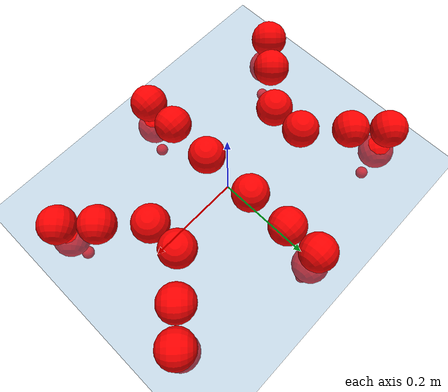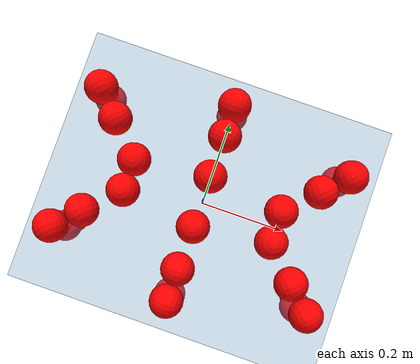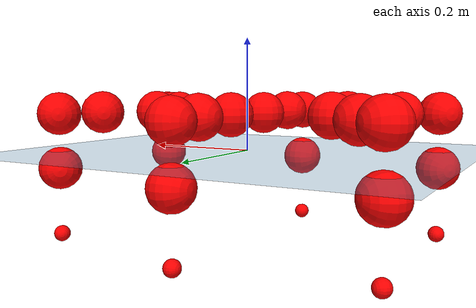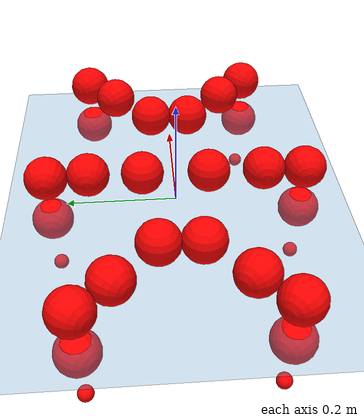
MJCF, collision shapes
<mujoco model="Golem">
  <compiler angle="radian" assetdir="assets" balanceinertia="true" inertiafromgeom="false"/>

  <option timestep="0.005" density="1.2" viscosity="2e-05"/>

  <size nkey="1"/>

  <visual>
    <quality shadowsize="8192"/>
    <map shadowclip="0.5"/>
  </visual>

  <default>
    <default class="/">
      <joint armature="0.01" damping="0.01" frictionloss="0.01"/>
      <geom contype="0" conaffinity="0" group="1" solref="-1000 -80"/>
      <site size="0.01 0.005 0.005" group="5"/>
      <general forcelimited="true" biastype="affine" gainprm="25" biasprm="0 -25 -0.5"/>
      <default class="visual">
        <geom type="mesh" group="2"/>
      </default>
      <default class="collision">
        <geom group="3"/>
      </default>
      <default class="foot">
        <geom size="0.01 0 0" condim="6" group="4" priority="1" solimp="0.015 1 0.01"/>
      </default>
      <default class="reward_collision_sphere">
        <geom group="5" rgba="1 0 0 1"/>
      </default>
    </default>
  </default>

  <asset>
    <texture type="skybox" colorspace="auto" name="//unnamed_texture_0" builtin="gradient" rgb1="0.95 0.95 0.95" rgb2="0.95 0.95 0.95" width="100" height="600"/>
    <texture type="2d" colorspace="auto" name="texplane" builtin="checker" rgb1="0.345 0.575 0.748" rgb2="0.345 0.575 0.748" markrgb="1 1 1" width="512" height="512"/>
    <material name="MatPlane" class="/" texture="texplane" texuniform="true" texrepeat="2 2" specular="0.9"/>
    <mesh name="body" class="/" file="body.stl" scale="0.001 0.001 0.001"/>
    <mesh name="coxa" class="/" file="coxa.stl" scale="0.001 0.001 0.001"/>
    <mesh name="femur" class="/" file="femur.stl" scale="0.001 0.001 0.001"/>
    <mesh name="tibia" class="/" file="tibia.stl" scale="0.001 0.001 0.001"/>
    <mesh name="tarsus" class="/" file="tarsus.stl" scale="0.001 0.001 0.001"/>
  </asset>

  <worldbody>
    <geom name="floor" class="/" size="100 100 0.125" type="plane" group="0" material="MatPlane"/>
    <light name="toplight_shadow" class="/" pos="0 0 5" dir="0.0990148 0.0990148 -0.990148" type="directional" ambient="0.04 0.04 0.04" diffuse="0.55 0.55 0.55" specular="0.12 0.12 0.12"/>
    <light name="toplight_fill" class="/" pos="0 0 5" dir="0.0990148 0.0990148 -0.990148" type="directional" castshadow="false" ambient="0.04 0.04 0.04" diffuse="0.3 0.3 0.3" specular="0.08 0.08 0.08"/>
    <body name="trunk" pos="-0.00099952 0.0014887 -0.000346406" quat="1 7.07246e-05 -2.69522e-05 -9.34034e-05">
      <inertial pos="0.00110768 -0.000595051 -0.00536656" quat="0.999997 -0.000852411 -0.00118803 -0.00219886" mass="3.29503" diaginertia="0.0173273 0.00178362 0.0123083"/>
      <joint name="//unnamed_joint_0" type="free"/>
      <geom name="//unnamed_geom_1" class="/" pos="0 0 0.0668703" quat="1 0 0 0" type="mesh" rgba="0.9 0.9 0.9 1" mesh="body"/>
      <site name="imu" class="/" pos="0.142269 0.000337125 0.101993" size="0.00954579"/>
      <camera name="track" class="/" pos="0 -1.41293 0" quat="0.707107 0.707107 0 0" mode="trackcom"/>
      <camera name="ego_camera" class="/" pos="0.144615 0 0.104485" quat="-0.5 -0.5 0.5 0.5"/>
      <body name="coxa_RR" pos="-0.19811 -0.0583563 0.0690964" quat="0.382881 -0.000456447 5.85741e-05 -0.923798">
        <inertial pos="-0.000311858 -0.00190617 0.00236784" quat="0.999994 -0.00322698 -0.000186778 0.000970547" mass="0.176424" diaginertia="0.0171678 0.00178837 0.0124473"/>
        <joint name="coxa_joint_RR" class="/" pos="0 0 0" axis="-0.000350107 -0.00332088 -0.999994" range="-3.12706 3.13502" armature="0.00959018" damping="0.00877652" frictionloss="0.00943368"/>
        <geom name="//unnamed_geom_2" class="/" type="mesh" rgba="0.2 0.2 0.2 1" mesh="coxa"/>
        <geom name="//unnamed_geom_3" class="reward_collision_sphere" size="0.0381831" pos="-0.0333727 0 0"/>
        <body name="femur_RR" pos="0.0683741 0.000731123 -0.00122733" quat="0.500118 -0.499862 0.499727 0.500292">
          <inertial pos="-0.000837582 0.00054417 0.000543138" quat="1 -0.000211206 0.000156965 4.53977e-05" mass="0.173818" diaginertia="0.0170347 0.00176748 0.0124843"/>
          <joint name="femur_joint_RR" class="/" pos="0 0 0" axis="0.000612777 0.00245673 -0.999997" range="-3.13929 3.12989" armature="0.00943917" damping="0.00527031" frictionloss="0.00958269"/>
          <geom name="//unnamed_geom_4" class="/" type="mesh" rgba="0.9 0.9 0.9 1" mesh="femur"/>
          <geom name="//unnamed_geom_5" class="reward_collision_sphere" size="0.0381831"/>
          <body name="tibia_RR" pos="0.00082197 -0.0775076 0.000861182" quat="0.000146105 1 8.80506e-05 -4.96026e-05">
            <inertial pos="-0.000904276 -0.000513654 -0.000561265" quat="0.999996 0.000998951 0.00227709 -0.0011823" mass="0.171213" diaginertia="0.0169501 0.00176057 0.0126699"/>
            <joint name="tibia_joint_RR" class="/" pos="0 0 0" axis="-0.00113619 0.00119136 0.999999" range="-3.12297 3.09475" armature="0.00958712" damping="0.00818217" frictionloss="0.00962097"/>
            <geom name="//unnamed_geom_6" class="/" type="mesh" rgba="0.2 0.2 0.2 1" mesh="tibia"/>
            <geom name="//unnamed_geom_7" class="reward_collision_sphere" size="0.0381831"/>
            <body name="tarsus_RR" pos="0.0980527 -0.000929797 -0.000873425" quat="1 -9.90856e-05 0.000103068 -9.32268e-05">
              <inertial pos="0.068983 0.00287975 -0.00107264" quat="0.501309 0.502027 0.496798 0.49985" mass="0.177094" diaginertia="0.0174524 0.00181649 0.012693"/>
              <joint name="tarsus_joint_RR" class="/" pos="0 0 0" axis="-0.0039964 -0.00565366 0.999976" range="-3.10014 3.14011" armature="0.00907407" damping="0.0402243" frictionloss="0.00922158"/>
              <geom name="//unnamed_geom_8" class="/" type="mesh" rgba="0.9 0.9 0.9 1" mesh="tarsus"/>
              <geom name="foot_1" class="foot" size="0.00910307" pos="0.124591 0 0" quat="0 -0.707107 0 0.707107"/>
              <geom name="//unnamed_geom_10" class="reward_collision_sphere" size="0.0381831"/>
              <geom name="//unnamed_geom_11" class="reward_collision_sphere" size="0.0143187" pos="0.119585 0 0"/>
              <site name="foot_1" class="foot" pos="0.124591 0 0" quat="0 -0.707107 0 0.707107" size="0.00954579"/>
            </body>
          </body>
        </body>
      </body>
      <body name="coxa_RM" pos="-0.000812588 -0.0939636 0.0660132" quat="0.707088 1.74282e-05 2.99901e-05 -0.707125">
        <inertial pos="-0.00010248 -0.000716372 -0.000585258" quat="1 7.8078e-06 -3.16439e-06 -1.15576e-06" mass="0.172508" diaginertia="0.0168775 0.00174145 0.0123339"/>
        <joint name="coxa_joint_RM" class="/" pos="0 0 0" axis="0.00112719 0.00519065 -0.999986" range="-3.13173 3.15482" armature="0.00967952" damping="0.00718986" frictionloss="0.00853395"/>
        <geom name="//unnamed_geom_12" class="/" type="mesh" rgba="0.2 0.2 0.2 1" mesh="coxa"/>
        <geom name="//unnamed_geom_13" class="reward_collision_sphere" size="0.0381831" pos="-0.0333727 0 0"/>
        <body name="femur_RM" pos="0.0657075 -0.00103832 0.000802321" quat="0.49999 -0.500008 0.499974 0.500028">
          <inertial pos="7.01057e-05 0.000149458 0.000566381" quat="0.999996 -0.000142925 0.00207369 -0.00191831" mass="0.171721" diaginertia="0.0166029 0.00176959 0.0123684"/>
          <joint name="femur_joint_RM" class="/" pos="0 0 0" axis="0.000896043 0.0029489 -0.999995" range="-3.15131 3.15172" armature="0.0092989" damping="0" frictionloss="0.00949319"/>
          <geom name="//unnamed_geom_14" class="/" type="mesh" rgba="0.9 0.9 0.9 1" mesh="femur"/>
          <geom name="//unnamed_geom_15" class="reward_collision_sphere" size="0.0381831"/>
          <body name="tibia_RM" pos="0.0013688 -0.0741655 -0.000440847" quat="3.32952e-05 1 -4.05205e-05 1.22237e-05">
            <inertial pos="-0.00195331 -0.00227255 -0.00104701" quat="0.999951 0.00350262 0.000106164 0.00927214" mass="0.172771" diaginertia="0.016976 0.00175607 0.0121251"/>
            <joint name="tibia_joint_RM" class="/" pos="0 0 0" axis="-0.000329485 0.000833115 1" range="-3.13288 3.12195" armature="0.00919996" damping="0.0136485" frictionloss="0.00934573"/>
            <geom name="//unnamed_geom_16" class="/" type="mesh" rgba="0.2 0.2 0.2 1" mesh="tibia"/>
            <geom name="//unnamed_geom_17" class="reward_collision_sphere" size="0.0381831"/>
            <body name="tarsus_RM" pos="0.097663 0.000871744 -0.000268448" quat="1 -0.000186494 0.000109471 0.000162687">
              <inertial pos="0.0666202 0.000655587 0.000255737" quat="0.499624 0.498181 0.500357 0.501831" mass="0.173855" diaginertia="0.0168211 0.00175928 0.0124366"/>
              <joint name="tarsus_joint_RM" class="/" pos="0 0 0" axis="-0.00116639 -0.000670713 0.999999" range="-3.14013 3.13842" armature="0.00874785" damping="0.00494593" frictionloss="0.00977071"/>
              <geom name="//unnamed_geom_18" class="/" type="mesh" rgba="0.9 0.9 0.9 1" mesh="tarsus"/>
              <geom name="foot_2" class="foot" size="0.0094028" pos="0.124591 0 0" quat="0 -0.707107 0 0.707107"/>
              <geom name="//unnamed_geom_20" class="reward_collision_sphere" size="0.0381831"/>
              <geom name="//unnamed_geom_21" class="reward_collision_sphere" size="0.0143187" pos="0.119585 0 0"/>
              <site name="foot_2" class="foot" pos="0.124591 0 0" quat="0 -0.707107 0 0.707107" size="0.00954579"/>
            </body>
          </body>
        </body>
      </body>
      <body name="coxa_RF" pos="0.197945 -0.0600797 0.0660513" quat="0.923907 0.000101788 -1.97767e-05 -0.382618">
        <inertial pos="0.00141937 -0.000131033 0.000306075" quat="0.999998 -0.00147668 6.26464e-05 0.000903198" mass="0.175105" diaginertia="0.0174626 0.00175709 0.0122685"/>
        <joint name="coxa_joint_RF" class="/" pos="0 0 0" axis="-0.00204941 0.000220188 -0.999998" stiffness="0.00023992" range="-3.13322 3.12872" armature="0.00993967" damping="0.00864822" frictionloss="0.00928879"/>
        <geom name="//unnamed_geom_22" class="/" type="mesh" rgba="0.2 0.2 0.2 1" mesh="coxa"/>
        <geom name="//unnamed_geom_23" class="reward_collision_sphere" size="0.0381831" pos="-0.0333727 0 0"/>
        <body name="femur_RF" pos="0.0676206 -0.000728294 -0.00161152" quat="0.500013 -0.50015 0.500139 0.499698">
          <inertial pos="-0.000678862 1.69377e-05 -0.000591614" quat="0.999992 0.00189695 0.00355141 0.000543243" mass="0.172691" diaginertia="0.0171521 0.0017978 0.012347"/>
          <joint name="femur_joint_RF" class="/" pos="0 0 0" axis="0.000647431 -0.000475132 -1" range="-3.11455 3.14149" armature="0.00960462" damping="0" frictionloss="0.00906774"/>
          <geom name="//unnamed_geom_24" class="/" type="mesh" rgba="0.9 0.9 0.9 1" mesh="femur"/>
          <geom name="//unnamed_geom_25" class="reward_collision_sphere" size="0.0381831"/>
          <body name="tibia_RF" pos="3.08621e-05 -0.0755086 -0.000814496" quat="4.62926e-06 1 4.8166e-05 -1.15556e-05">
            <inertial pos="-0.000987471 0.000306517 1.2169e-05" quat="0.999991 -0.00202202 -0.00362954 9.45735e-05" mass="0.174333" diaginertia="0.017481 0.00176766 0.0125581"/>
            <joint name="tibia_joint_RF" class="/" pos="0 0 0" axis="-0.000199085 0.000278642 1" range="-3.12768 3.14557" armature="0.00913637" damping="0.0121078" frictionloss="0.00915033"/>
            <geom name="//unnamed_geom_26" class="/" type="mesh" rgba="0.2 0.2 0.2 1" mesh="tibia"/>
            <geom name="//unnamed_geom_27" class="reward_collision_sphere" size="0.0381831"/>
            <body name="tarsus_RF" pos="0.0969073 0.00119609 0.00146103" quat="1 -0.000716468 -0.000276488 -0.000494023">
              <inertial pos="0.0664858 -0.00169669 0.000485107" quat="0.501804 0.498415 0.492509 0.507158" mass="0.171408" diaginertia="0.0172886 0.00170551 0.0123978"/>
              <joint name="tarsus_joint_RF" class="/" pos="0 0 0" axis="0.00345778 0.00305795 0.999989" range="-3.1041 3.12779" armature="0.0105862" damping="0" frictionloss="0.00959096"/>
              <geom name="//unnamed_geom_28" class="/" type="mesh" rgba="0.9 0.9 0.9 1" mesh="tarsus"/>
              <geom name="foot_3" class="foot" size="0.00996834" pos="0.124591 0 0" quat="0 -0.707107 0 0.707107"/>
              <geom name="//unnamed_geom_30" class="reward_collision_sphere" size="0.0381831"/>
              <geom name="//unnamed_geom_31" class="reward_collision_sphere" size="0.0143187" pos="0.119585 0 0"/>
              <site name="foot_3" class="foot" pos="0.124591 0 0" quat="0 -0.707107 0 0.707107" size="0.00954579"/>
            </body>
          </body>
        </body>
      </body>
      <body name="coxa_LR" pos="-0.197706 0.0610261 0.0691354" quat="0.38239 0.000162882 -0.000608501 0.924001">
        <inertial pos="0.00102066 -0.00227692 -0.000589266" quat="0.999992 0.000664138 -0.00309377 -0.00228457" mass="0.169848" diaginertia="0.0166587 0.0017544 0.0121374"/>
        <joint name="coxa_joint_LR" class="/" pos="0 0 0" axis="-8.09034e-05 0.00103417 -0.999999" range="-3.12099 3.17452" armature="0.00880566" damping="0.00737267" frictionloss="0.00946327"/>
        <geom name="//unnamed_geom_32" class="/" type="mesh" rgba="0.2 0.2 0.2 1" mesh="coxa"/>
        <geom name="//unnamed_geom_33" class="reward_collision_sphere" size="0.0381831" pos="-0.0333727 0 0"/>
        <body name="femur_LR" pos="0.0695055 -0.00177916 -0.0009321" quat="0.499883 -0.500037 0.499998 0.500082">
          <inertial pos="-0.000984383 -2.91402e-05 -0.000641328" quat="0.99996 -0.0087714 0.00108147 0.00139881" mass="0.174507" diaginertia="0.0170962 0.00175893 0.0127697"/>
          <joint name="femur_joint_LR" class="/" pos="0 0 0" axis="-0.00147335 -0.00154804 0.999998" range="-3.09725 3.12311" armature="0.00936912" damping="0.00263585" frictionloss="0.00932833"/>
          <geom name="//unnamed_geom_34" class="/" type="mesh" rgba="0.9 0.9 0.9 1" mesh="femur"/>
          <geom name="//unnamed_geom_35" class="reward_collision_sphere" size="0.0381831"/>
          <body name="tibia_LR" pos="-0.000752035 -0.0775583 -0.00202268" quat="-0.000120024 1 0.00014209 0.000317325">
            <inertial pos="-0.000559719 -0.00173537 0.00073393" quat="0.999998 -0.000112018 -0.00153612 -0.00104421" mass="0.173809" diaginertia="0.0170068 0.00173683 0.0124584"/>
            <joint name="tibia_joint_LR" class="/" pos="0 0 0" axis="0.000201586 -0.00323154 -0.999995" range="-3.15581 3.12901" armature="0.0097282" damping="0" frictionloss="0.00943806"/>
            <geom name="//unnamed_geom_36" class="/" type="mesh" rgba="0.2 0.2 0.2 1" mesh="tibia"/>
            <geom name="//unnamed_geom_37" class="reward_collision_sphere" size="0.0381831"/>
            <body name="tarsus_LR" pos="0.0991505 0.00064606 0.000113728" quat="1 -0.000507904 -0.000146311 -0.000256027">
              <inertial pos="0.0677053 0.000129104 0.000339498" quat="0.500057 0.500172 0.499653 0.500118" mass="0.172741" diaginertia="0.0168616 0.00174664 0.0122731"/>
              <joint name="tarsus_joint_LR" class="/" pos="0 0 0" axis="0.00176726 -0.00160684 -0.999997" range="-3.16457 3.13558" armature="0.00960905" damping="0.0298389" frictionloss="0.00885259"/>
              <geom name="//unnamed_geom_38" class="/" type="mesh" rgba="0.9 0.9 0.9 1" mesh="tarsus"/>
              <geom name="foot_4" class="foot" size="0.00932327" pos="0.124591 0 0" quat="0.707107 0 -0.707107 0"/>
              <geom name="//unnamed_geom_40" class="reward_collision_sphere" size="0.0381831"/>
              <geom name="//unnamed_geom_41" class="reward_collision_sphere" size="0.0143187" pos="0.119585 0 0"/>
              <site name="foot_4" class="foot" pos="0.124591 0 0" quat="0.707107 0 -0.707107 0" size="0.00954579"/>
            </body>
          </body>
        </body>
      </body>
      <body name="coxa_LM" pos="-0.000958611 0.0912726 0.0670583" quat="0.70688 -0.000218908 9.01609e-05 0.707333">
        <inertial pos="-0.000639077 0.000768525 0.000453251" quat="1 -0.000677005 -0.00065903 -0.000190914" mass="0.176172" diaginertia="0.0169157 0.0017303 0.0127824"/>
        <joint name="coxa_joint_LM" class="/" pos="0 0 0" axis="-0.00012343 -0.00288658 -0.999996" stiffness="0.00717078" range="-3.13755 3.13789" armature="0.0103619" damping="0.00278831" frictionloss="0.00959045"/>
        <geom name="//unnamed_geom_42" class="/" type="mesh" rgba="0.2 0.2 0.2 1" mesh="coxa"/>
        <geom name="//unnamed_geom_43" class="reward_collision_sphere" size="0.0381831" pos="-0.0333727 0 0"/>
        <body name="femur_LM" pos="0.0627493 -0.000884438 0.000452572" quat="0.499972 -0.500046 0.500076 0.499907">
          <inertial pos="0.000763871 -0.000880323 0.00143043" quat="0.999999 -0.000295737 -0.0014924 0.000474882" mass="0.174225" diaginertia="0.0168556 0.00175571 0.0126139"/>
          <joint name="femur_joint_LM" class="/" pos="0 0 0" axis="0.00546179 -0.00571752 0.999969" range="-3.13069 3.12615" armature="0.00907259" damping="0.00593857" frictionloss="0.00957372"/>
          <geom name="//unnamed_geom_44" class="/" type="mesh" rgba="0.9 0.9 0.9 1" mesh="femur"/>
          <geom name="//unnamed_geom_45" class="reward_collision_sphere" size="0.0381831"/>
          <body name="tibia_LM" pos="0.00208472 -0.0739078 0.00191252" quat="4.22124e-05 1 -0.0001686 -0.000179617">
            <inertial pos="0.00046563 -0.00228797 0.00214206" quat="0.999943 0.00118997 -0.00787535 0.00709908" mass="0.170304" diaginertia="0.0171925 0.00173011 0.0123118"/>
            <joint name="tibia_joint_LM" class="/" pos="0 0 0" axis="-0.000622731 -0.00203993 -0.999998" range="-3.13546 3.10935" armature="0.00915044" damping="0.00427131" frictionloss="0.0094722"/>
            <geom name="//unnamed_geom_46" class="/" type="mesh" rgba="0.2 0.2 0.2 1" mesh="tibia"/>
            <geom name="//unnamed_geom_47" class="reward_collision_sphere" size="0.0381831"/>
            <body name="tarsus_LM" pos="0.0983153 0.000345904 0.000602681" quat="1 -0.000149667 -0.000409184 -0.000221332">
              <inertial pos="0.0675713 6.96125e-05 -0.00107232" quat="0.496717 0.495758 0.50769 0.499748" mass="0.178082" diaginertia="0.0171607 0.00175962 0.0125578"/>
              <joint name="tarsus_joint_LM" class="/" pos="0 0 0" axis="-0.000700136 -0.00544231 -0.999985" range="-3.14356 3.11151" armature="0.009972" damping="0" frictionloss="0.00954275"/>
              <geom name="//unnamed_geom_48" class="/" type="mesh" rgba="0.9 0.9 0.9 1" mesh="tarsus"/>
              <geom name="foot_5" class="foot" size="0.00951735" pos="0.124591 0 0" quat="0.707107 0 -0.707107 0"/>
              <geom name="//unnamed_geom_50" class="reward_collision_sphere" size="0.0381831"/>
              <geom name="//unnamed_geom_51" class="reward_collision_sphere" size="0.0143187" pos="0.119585 0 0"/>
              <site name="foot_5" class="foot" pos="0.124591 0 0" quat="0.707107 0 -0.707107 0" size="0.00954579"/>
            </body>
          </body>
        </body>
      </body>
      <body name="coxa_LF" pos="0.196808 0.0593562 0.0681654" quat="0.923694 0.000383495 -0.000465117 0.38313">
        <inertial pos="-0.000752175 0.000658091 -0.00078483" quat="0.999944 -0.00739127 0.00699143 -0.00303631" mass="0.178331" diaginertia="0.0172506 0.00179992 0.0121619"/>
        <joint name="coxa_joint_LF" class="/" pos="0 0 0" axis="-0.00147259 -0.000774069 -0.999999" range="-3.13884 3.13813" armature="0.00969154" damping="0.00371994" frictionloss="0.00953301"/>
        <geom name="//unnamed_geom_52" class="/" type="mesh" rgba="0.2 0.2 0.2 1" mesh="coxa"/>
        <geom name="//unnamed_geom_53" class="reward_collision_sphere" size="0.0381831" pos="-0.0333727 0 0"/>
        <body name="femur_LF" pos="0.0651392 -7.97277e-05 -0.000381128" quat="0.500161 -0.499597 0.499969 0.500272">
          <inertial pos="0.00142613 0.000977727 0.00172639" quat="0.999988 0.00398971 -0.00238623 0.00160467" mass="0.171663" diaginertia="0.0167539 0.00175557 0.0121037"/>
          <joint name="femur_joint_LF" class="/" pos="0 0 0" axis="0.00426387 0.00165726 0.99999" range="-3.14214 3.18193" armature="0.0096465" damping="0" frictionloss="0.00966078"/>
          <geom name="//unnamed_geom_54" class="/" type="mesh" rgba="0.9 0.9 0.9 1" mesh="femur"/>
          <geom name="//unnamed_geom_55" class="reward_collision_sphere" size="0.0381831"/>
          <body name="tibia_LF" pos="0.00169275 -0.0761079 0.000566979" quat="3.7795e-05 1 -4.46856e-05 1.95007e-05">
            <inertial pos="-3.59914e-05 -0.000750468 0.000110098" quat="0.999999 0.000958166 0.0001454 -0.00119986" mass="0.173741" diaginertia="0.0170154 0.0017606 0.0124657"/>
            <joint name="tibia_joint_LF" class="/" pos="0 0 0" axis="-0.000995917 -0.00104477 -0.999999" range="-3.11905 3.1415" armature="0.00877142" damping="0" frictionloss="0.00911939"/>
            <geom name="//unnamed_geom_56" class="/" type="mesh" rgba="0.2 0.2 0.2 1" mesh="tibia"/>
            <geom name="//unnamed_geom_57" class="reward_collision_sphere" size="0.0381831"/>
            <body name="tarsus_LF" pos="0.0980336 8.42763e-05 0.000221787" quat="1 -6.68495e-05 0.000404853 0.000258788">
              <inertial pos="0.0666264 -0.000952349 0.000411301" quat="0.500848 0.500043 0.499327 0.499781" mass="0.172277" diaginertia="0.0172137 0.00177213 0.0124908"/>
              <joint name="tarsus_joint_LF" class="/" pos="0 0 0" axis="0.00346251 0.00290478 -0.99999" stiffness="0.0227937" range="-3.17077 3.17316" armature="0.00955359" damping="0" frictionloss="0.00936911"/>
              <geom name="//unnamed_geom_58" class="/" type="mesh" rgba="0.9 0.9 0.9 1" mesh="tarsus"/>
              <geom name="foot_6" class="foot" size="0.0091949" pos="0.124591 0 0" quat="0.707107 0 -0.707107 0"/>
              <geom name="//unnamed_geom_60" class="reward_collision_sphere" size="0.0381831"/>
              <geom name="//unnamed_geom_61" class="reward_collision_sphere" size="0.0143187" pos="0.119585 0 0"/>
              <site name="foot_6" class="foot" pos="0.124591 0 0" quat="0.707107 0 -0.707107 0" size="0.00954579"/>
            </body>
          </body>
        </body>
      </body>
    </body>
  </worldbody>

  <contact>
    <pair class="/" geom1="floor" geom2="foot_1" name="//unnamed_contact_0"/>
    <pair class="/" geom1="floor" geom2="foot_2" name="//unnamed_contact_1"/>
    <pair class="/" geom1="floor" geom2="foot_3" name="//unnamed_contact_2"/>
    <pair class="/" geom1="floor" geom2="foot_4" name="//unnamed_contact_3"/>
    <pair class="/" geom1="floor" geom2="foot_5" name="//unnamed_contact_4"/>
    <pair class="/" geom1="floor" geom2="foot_6" name="//unnamed_contact_5"/>
  </contact>

  <actuator>
    <general name="coxa_joint_RR" class="/" joint="coxa_joint_RR" forcerange="-6.71798 6.71798" gainprm="23.0225" biasprm="0 -23.0225 -0.492633"/>
    <general name="femur_joint_RR" class="/" joint="femur_joint_RR" forcerange="-7.16095 7.16095" gainprm="23.0225" biasprm="0 -23.0225 -0.492633"/>
    <general name="tibia_joint_RR" class="/" joint="tibia_joint_RR" forcerange="-6.47229 6.47229" gainprm="23.0225" biasprm="0 -23.0225 -0.492633"/>
    <general name="tarsus_joint_RR" class="/" joint="tarsus_joint_RR" forcerange="-7.00111 7.00111" gainprm="23.0225" biasprm="0 -23.0225 -0.492633"/>
    <general name="coxa_joint_RM" class="/" joint="coxa_joint_RM" forcerange="-6.95327 6.95327" gainprm="23.0225" biasprm="0 -23.0225 -0.492633"/>
    <general name="femur_joint_RM" class="/" joint="femur_joint_RM" forcerange="-7.03474 7.03474" gainprm="23.0225" biasprm="0 -23.0225 -0.492633"/>
    <general name="tibia_joint_RM" class="/" joint="tibia_joint_RM" forcerange="-6.41347 6.41347" gainprm="23.0225" biasprm="0 -23.0225 -0.492633"/>
    <general name="tarsus_joint_RM" class="/" joint="tarsus_joint_RM" forcerange="-7.19004 7.19004" gainprm="23.0225" biasprm="0 -23.0225 -0.492633"/>
    <general name="coxa_joint_RF" class="/" joint="coxa_joint_RF" forcerange="-6.88318 6.88318" gainprm="23.0225" biasprm="0 -23.0225 -0.492633"/>
    <general name="femur_joint_RF" class="/" joint="femur_joint_RF" forcerange="-7.52754 7.52754" gainprm="23.0225" biasprm="0 -23.0225 -0.492633"/>
    <general name="tibia_joint_RF" class="/" joint="tibia_joint_RF" forcerange="-6.77867 6.77867" gainprm="23.0225" biasprm="0 -23.0225 -0.492633"/>
    <general name="tarsus_joint_RF" class="/" joint="tarsus_joint_RF" forcerange="-7.52032 7.52032" gainprm="23.0225" biasprm="0 -23.0225 -0.492633"/>
    <general name="coxa_joint_LR" class="/" joint="coxa_joint_LR" forcerange="-6.69988 6.69988" gainprm="23.0225" biasprm="0 -23.0225 -0.492633"/>
    <general name="femur_joint_LR" class="/" joint="femur_joint_LR" forcerange="-6.70892 6.70892" gainprm="23.0225" biasprm="0 -23.0225 -0.492633"/>
    <general name="tibia_joint_LR" class="/" joint="tibia_joint_LR" forcerange="-6.87108 6.87108" gainprm="23.0225" biasprm="0 -23.0225 -0.492633"/>
    <general name="tarsus_joint_LR" class="/" joint="tarsus_joint_LR" forcerange="-7.01452 7.01452" gainprm="23.0225" biasprm="0 -23.0225 -0.492633"/>
    <general name="coxa_joint_LM" class="/" joint="coxa_joint_LM" forcerange="-6.75258 6.75258" gainprm="23.0225" biasprm="0 -23.0225 -0.492633"/>
    <general name="femur_joint_LM" class="/" joint="femur_joint_LM" forcerange="-7.00917 7.00917" gainprm="23.0225" biasprm="0 -23.0225 -0.492633"/>
    <general name="tibia_joint_LM" class="/" joint="tibia_joint_LM" forcerange="-6.52518 6.52518" gainprm="23.0225" biasprm="0 -23.0225 -0.492633"/>
    <general name="tarsus_joint_LM" class="/" joint="tarsus_joint_LM" forcerange="-6.9063 6.9063" gainprm="23.0225" biasprm="0 -23.0225 -0.492633"/>
    <general name="coxa_joint_LF" class="/" joint="coxa_joint_LF" forcerange="-6.71155 6.71155" gainprm="23.0225" biasprm="0 -23.0225 -0.492633"/>
    <general name="femur_joint_LF" class="/" joint="femur_joint_LF" forcerange="-6.65649 6.65649" gainprm="23.0225" biasprm="0 -23.0225 -0.492633"/>
    <general name="tibia_joint_LF" class="/" joint="tibia_joint_LF" forcerange="-6.89336 6.89336" gainprm="23.0225" biasprm="0 -23.0225 -0.492633"/>
    <general name="tarsus_joint_LF" class="/" joint="tarsus_joint_LF" forcerange="-6.98847 6.98847" gainprm="23.0225" biasprm="0 -23.0225 -0.492633"/>
  </actuator>

  <sensor>
    <gyro site="imu" name="imu_angular_velocity"/>
    <velocimeter site="imu" name="imu_linear_velocity"/>
    <framelinvel objtype="site" objname="foot_1" name="foot_1_global_linear_velocity"/>
    <framelinvel objtype="site" objname="foot_2" name="foot_2_global_linear_velocity"/>
    <framelinvel objtype="site" objname="foot_3" name="foot_3_global_linear_velocity"/>
    <framelinvel objtype="site" objname="foot_4" name="foot_4_global_linear_velocity"/>
    <framelinvel objtype="site" objname="foot_5" name="foot_5_global_linear_velocity"/>
    <framelinvel objtype="site" objname="foot_6" name="foot_6_global_linear_velocity"/>
  </sensor>

  <keyframe>
    <key name="home" qpos="0 0 0.1457 1 0 0 0 0 0 0 0 0 0 0 0 0 0 0 0 0 0 0 0 0 0 0 0 0 0 0 0"/>
  </keyframe>
</mujoco>
